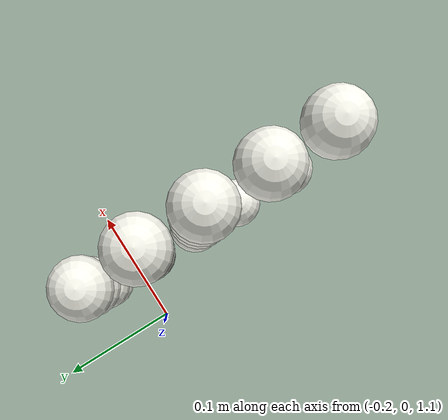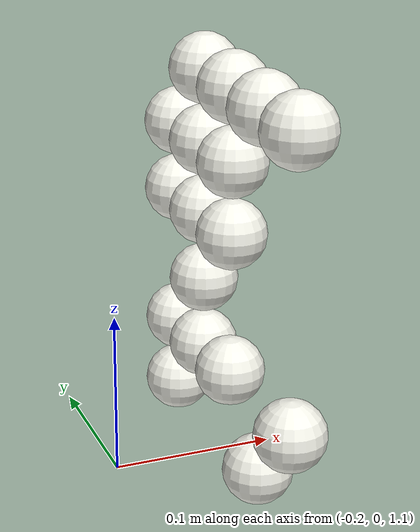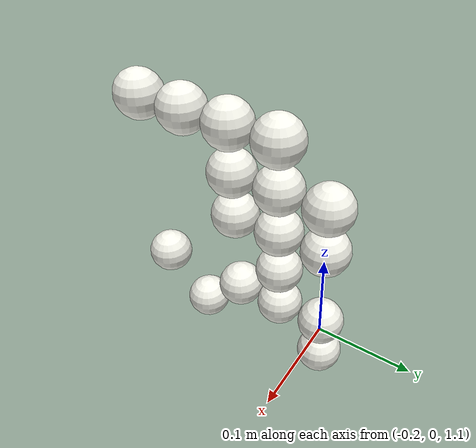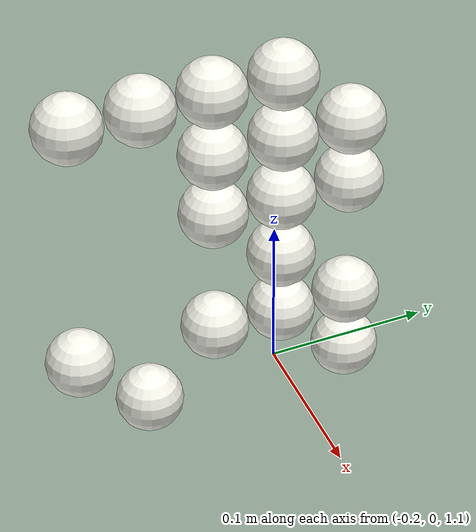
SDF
<sdf version="1.8">
 <world name="physical_100_dt5ms_diagnostic">
  <model name="ground">
   <static>true</static>
   <link name="ground_link">
    <collision name="floor">
     <geometry><plane><normal>0 0 1</normal><size>20 20</size></plane></geometry>
    </collision>
    <visual name="floor_visual">
     <geometry><plane><normal>0 0 1</normal><size>20 20</size></plane></geometry>
     <material><ambient>0.65 0.67 0.7 1</ambient><diffuse>0.65 0.67 0.7 1</diffuse></material>
    </visual>
   </link>
  </model>
  <model name="inventory_ball_006">
   <static>false</static>
   <pose>-0.15037303511163805 -0.1005677356267756 1.1432535594103257 0 0 0</pose>
   <link name="ball_link">
    <inertial>
     <mass>0.0027000000000000001</mass>
     <inertia>
      <ixx>7.1999999999999999e-07</ixx>
      <iyy>7.1999999999999999e-07</iyy>
      <izz>7.1999999999999999e-07</izz>
      <ixy>0</ixy>
      <ixz>0</ixz>
      <iyz>0</iyz>
     </inertia>
    </inertial>
    <collision name="ball_collision">
     <geometry><sphere><radius>0.02</radius></sphere></geometry>
     <surface>
      <friction><ode><mu>0.3</mu><mu2>0.3</mu2></ode></friction>
      <bounce><restitution_coefficient>0.8</restitution_coefficient><threshold>0.01</threshold></bounce>
     </surface>
    </collision>
    <visual name="ball_visual">
     <geometry><sphere><radius>0.02</radius></sphere></geometry>
     <material><ambient>0.96 0.96 0.92 1</ambient><diffuse>0.96 0.96 0.92 1</diffuse></material>
    </visual>
   </link>
  </model>
  <model name="inventory_ball_015">
   <static>false</static>
   <pose>-0.15056326103460904 0.024273632778161268 1.1429478751861544 0 0 0</pose>
   <link name="ball_link">
    <inertial>
     <mass>0.0027000000000000001</mass>
     <inertia>
      <ixx>7.1999999999999999e-07</ixx>
      <iyy>7.1999999999999999e-07</iyy>
      <izz>7.1999999999999999e-07</izz>
      <ixy>0</ixy>
      <ixz>0</ixz>
      <iyz>0</iyz>
     </inertia>
    </inertial>
    <collision name="ball_collision">
     <geometry><sphere><radius>0.02</radius></sphere></geometry>
     <surface>
      <friction><ode><mu>0.3</mu><mu2>0.3</mu2></ode></friction>
      <bounce><restitution_coefficient>0.8</restitution_coefficient><threshold>0.01</threshold></bounce>
     </surface>
    </collision>
    <visual name="ball_visual">
     <geometry><sphere><radius>0.02</radius></sphere></geometry>
     <material><ambient>0.96 0.96 0.92 1</ambient><diffuse>0.96 0.96 0.92 1</diffuse></material>
    </visual>
   </link>
  </model>
  <model name="inventory_ball_018">
   <static>false</static>
   <pose>-0.15057429578153708 -0.14213981330677056 1.1850619927526278 0 0 0</pose>
   <link name="ball_link">
    <inertial>
     <mass>0.0027000000000000001</mass>
     <inertia>
      <ixx>7.1999999999999999e-07</ixx>
      <iyy>7.1999999999999999e-07</iyy>
      <izz>7.1999999999999999e-07</izz>
      <ixy>0</ixy>
      <ixz>0</ixz>
      <iyz>0</iyz>
     </inertia>
    </inertial>
    <collision name="ball_collision">
     <geometry><sphere><radius>0.02</radius></sphere></geometry>
     <surface>
      <friction><ode><mu>0.3</mu><mu2>0.3</mu2></ode></friction>
      <bounce><restitution_coefficient>0.8</restitution_coefficient><threshold>0.01</threshold></bounce>
     </surface>
    </collision>
    <visual name="ball_visual">
     <geometry><sphere><radius>0.02</radius></sphere></geometry>
     <material><ambient>0.96 0.96 0.92 1</ambient><diffuse>0.96 0.96 0.92 1</diffuse></material>
    </visual>
   </link>
  </model>
  <model name="inventory_ball_024">
   <static>false</static>
   <pose>-0.15053935547441455 -0.058973410293848207 1.1850657458286014 0 0 0</pose>
   <link name="ball_link">
    <inertial>
     <mass>0.0027000000000000001</mass>
     <inertia>
      <ixx>7.1999999999999999e-07</ixx>
      <iyy>7.1999999999999999e-07</iyy>
      <izz>7.1999999999999999e-07</izz>
      <ixy>0</ixy>
      <ixz>0</ixz>
      <iyz>0</iyz>
     </inertia>
    </inertial>
    <collision name="ball_collision">
     <geometry><sphere><radius>0.02</radius></sphere></geometry>
     <surface>
      <friction><ode><mu>0.3</mu><mu2>0.3</mu2></ode></friction>
      <bounce><restitution_coefficient>0.8</restitution_coefficient><threshold>0.01</threshold></bounce>
     </surface>
    </collision>
    <visual name="ball_visual">
     <geometry><sphere><radius>0.02</radius></sphere></geometry>
     <material><ambient>0.96 0.96 0.92 1</ambient><diffuse>0.96 0.96 0.92 1</diffuse></material>
    </visual>
   </link>
  </model>
  <model name="inventory_ball_027">
   <static>false</static>
   <pose>-0.15054107190010116 -0.017352023495383603 1.1848368208804982 0 0 0</pose>
   <link name="ball_link">
    <inertial>
     <mass>0.0027000000000000001</mass>
     <inertia>
      <ixx>7.1999999999999999e-07</ixx>
      <iyy>7.1999999999999999e-07</iyy>
      <izz>7.1999999999999999e-07</izz>
      <ixy>0</ixy>
      <ixz>0</ixz>
      <iyz>0</iyz>
     </inertia>
    </inertial>
    <collision name="ball_collision">
     <geometry><sphere><radius>0.02</radius></sphere></geometry>
     <surface>
      <friction><ode><mu>0.3</mu><mu2>0.3</mu2></ode></friction>
      <bounce><restitution_coefficient>0.8</restitution_coefficient><threshold>0.01</threshold></bounce>
     </surface>
    </collision>
    <visual name="ball_visual">
     <geometry><sphere><radius>0.02</radius></sphere></geometry>
     <material><ambient>0.96 0.96 0.92 1</ambient><diffuse>0.96 0.96 0.92 1</diffuse></material>
    </visual>
   </link>
  </model>
  <model name="inventory_ball_030">
   <static>false</static>
   <pose>-0.15039428422379411 0.024154545647304283 1.1845282698252551 0 0 0</pose>
   <link name="ball_link">
    <inertial>
     <mass>0.0027000000000000001</mass>
     <inertia>
      <ixx>7.1999999999999999e-07</ixx>
      <iyy>7.1999999999999999e-07</iyy>
      <izz>7.1999999999999999e-07</izz>
      <ixy>0</ixy>
      <ixz>0</ixz>
      <iyz>0</iyz>
     </inertia>
    </inertial>
    <collision name="ball_collision">
     <geometry><sphere><radius>0.02</radius></sphere></geometry>
     <surface>
      <friction><ode><mu>0.3</mu><mu2>0.3</mu2></ode></friction>
      <bounce><restitution_coefficient>0.8</restitution_coefficient><threshold>0.01</threshold></bounce>
     </surface>
    </collision>
    <visual name="ball_visual">
     <geometry><sphere><radius>0.02</radius></sphere></geometry>
     <material><ambient>0.96 0.96 0.92 1</ambient><diffuse>0.96 0.96 0.92 1</diffuse></material>
    </visual>
   </link>
  </model>
  <model name="inventory_ball_042">
   <static>false</static>
   <pose>-0.15038178779668288 -0.017499656862323226 1.2262944936342031 0 0 0</pose>
   <link name="ball_link">
    <inertial>
     <mass>0.0027000000000000001</mass>
     <inertia>
      <ixx>7.1999999999999999e-07</ixx>
      <iyy>7.1999999999999999e-07</iyy>
      <izz>7.1999999999999999e-07</izz>
      <ixy>0</ixy>
      <ixz>0</ixz>
      <iyz>0</iyz>
     </inertia>
    </inertial>
    <collision name="ball_collision">
     <geometry><sphere><radius>0.02</radius></sphere></geometry>
     <surface>
      <friction><ode><mu>0.3</mu><mu2>0.3</mu2></ode></friction>
      <bounce><restitution_coefficient>0.8</restitution_coefficient><threshold>0.01</threshold></bounce>
     </surface>
    </collision>
    <visual name="ball_visual">
     <geometry><sphere><radius>0.02</radius></sphere></geometry>
     <material><ambient>0.96 0.96 0.92 1</ambient><diffuse>0.96 0.96 0.92 1</diffuse></material>
    </visual>
   </link>
  </model>
  <model name="inventory_ball_054">
   <static>false</static>
   <pose>-0.15056786956932905 -0.059057404148394582 1.2680786617743622 0 0 0</pose>
   <link name="ball_link">
    <inertial>
     <mass>0.0027000000000000001</mass>
     <inertia>
      <ixx>7.1999999999999999e-07</ixx>
      <iyy>7.1999999999999999e-07</iyy>
      <izz>7.1999999999999999e-07</izz>
      <ixy>0</ixy>
      <ixz>0</ixz>
      <iyz>0</iyz>
     </inertia>
    </inertial>
    <collision name="ball_collision">
     <geometry><sphere><radius>0.02</radius></sphere></geometry>
     <surface>
      <friction><ode><mu>0.3</mu><mu2>0.3</mu2></ode></friction>
      <bounce><restitution_coefficient>0.8</restitution_coefficient><threshold>0.01</threshold></bounce>
     </surface>
    </collision>
    <visual name="ball_visual">
     <geometry><sphere><radius>0.02</radius></sphere></geometry>
     <material><ambient>0.96 0.96 0.92 1</ambient><diffuse>0.96 0.96 0.92 1</diffuse></material>
    </visual>
   </link>
  </model>
  <model name="inventory_ball_057">
   <static>false</static>
   <pose>-0.15057145791557772 -0.017420612890764978 1.2682613085443486 0 0 0</pose>
   <link name="ball_link">
    <inertial>
     <mass>0.0027000000000000001</mass>
     <inertia>
      <ixx>7.1999999999999999e-07</ixx>
      <iyy>7.1999999999999999e-07</iyy>
      <izz>7.1999999999999999e-07</izz>
      <ixy>0</ixy>
      <ixz>0</ixz>
      <iyz>0</iyz>
     </inertia>
    </inertial>
    <collision name="ball_collision">
     <geometry><sphere><radius>0.02</radius></sphere></geometry>
     <surface>
      <friction><ode><mu>0.3</mu><mu2>0.3</mu2></ode></friction>
      <bounce><restitution_coefficient>0.8</restitution_coefficient><threshold>0.01</threshold></bounce>
     </surface>
    </collision>
    <visual name="ball_visual">
     <geometry><sphere><radius>0.02</radius></sphere></geometry>
     <material><ambient>0.96 0.96 0.92 1</ambient><diffuse>0.96 0.96 0.92 1</diffuse></material>
    </visual>
   </link>
  </model>
  <model name="inventory_ball_060">
   <static>false</static>
   <pose>-0.15044136929055615 0.024354147173811957 1.2679802148008223 0 0 0</pose>
   <link name="ball_link">
    <inertial>
     <mass>0.0027000000000000001</mass>
     <inertia>
      <ixx>7.1999999999999999e-07</ixx>
      <iyy>7.1999999999999999e-07</iyy>
      <izz>7.1999999999999999e-07</izz>
      <ixy>0</ixy>
      <ixz>0</ixz>
      <iyz>0</iyz>
     </inertia>
    </inertial>
    <collision name="ball_collision">
     <geometry><sphere><radius>0.02</radius></sphere></geometry>
     <surface>
      <friction><ode><mu>0.3</mu><mu2>0.3</mu2></ode></friction>
      <bounce><restitution_coefficient>0.8</restitution_coefficient><threshold>0.01</threshold></bounce>
     </surface>
    </collision>
    <visual name="ball_visual">
     <geometry><sphere><radius>0.02</radius></sphere></geometry>
     <material><ambient>0.96 0.96 0.92 1</ambient><diffuse>0.96 0.96 0.92 1</diffuse></material>
    </visual>
   </link>
  </model>
  <model name="inventory_ball_069">
   <static>false</static>
   <pose>-0.15040861532472954 -0.058971751620480496 1.3095406241755301 0 0 0</pose>
   <link name="ball_link">
    <inertial>
     <mass>0.0027000000000000001</mass>
     <inertia>
      <ixx>7.1999999999999999e-07</ixx>
      <iyy>7.1999999999999999e-07</iyy>
      <izz>7.1999999999999999e-07</izz>
      <ixy>0</ixy>
      <ixz>0</ixz>
      <iyz>0</iyz>
     </inertia>
    </inertial>
    <collision name="ball_collision">
     <geometry><sphere><radius>0.02</radius></sphere></geometry>
     <surface>
      <friction><ode><mu>0.3</mu><mu2>0.3</mu2></ode></friction>
      <bounce><restitution_coefficient>0.8</restitution_coefficient><threshold>0.01</threshold></bounce>
     </surface>
    </collision>
    <visual name="ball_visual">
     <geometry><sphere><radius>0.02</radius></sphere></geometry>
     <material><ambient>0.96 0.96 0.92 1</ambient><diffuse>0.96 0.96 0.92 1</diffuse></material>
    </visual>
   </link>
  </model>
  <model name="inventory_ball_072">
   <static>false</static>
   <pose>-0.15044619550840588 -0.01692560941548419 1.3098972536136959 0 0 0</pose>
   <link name="ball_link">
    <inertial>
     <mass>0.0027000000000000001</mass>
     <inertia>
      <ixx>7.1999999999999999e-07</ixx>
      <iyy>7.1999999999999999e-07</iyy>
      <izz>7.1999999999999999e-07</izz>
      <ixy>0</ixy>
      <ixz>0</ixz>
      <iyz>0</iyz>
     </inertia>
    </inertial>
    <collision name="ball_collision">
     <geometry><sphere><radius>0.02</radius></sphere></geometry>
     <surface>
      <friction><ode><mu>0.3</mu><mu2>0.3</mu2></ode></friction>
      <bounce><restitution_coefficient>0.8</restitution_coefficient><threshold>0.01</threshold></bounce>
     </surface>
    </collision>
    <visual name="ball_visual">
     <geometry><sphere><radius>0.02</radius></sphere></geometry>
     <material><ambient>0.96 0.96 0.92 1</ambient><diffuse>0.96 0.96 0.92 1</diffuse></material>
    </visual>
   </link>
  </model>
  <model name="inventory_ball_075">
   <static>false</static>
   <pose>-0.15037468287917541 0.024548785336227442 1.3093342991637449 0 0 0</pose>
   <link name="ball_link">
    <inertial>
     <mass>0.0027000000000000001</mass>
     <inertia>
      <ixx>7.1999999999999999e-07</ixx>
      <iyy>7.1999999999999999e-07</iyy>
      <izz>7.1999999999999999e-07</izz>
      <ixy>0</ixy>
      <ixz>0</ixz>
      <iyz>0</iyz>
     </inertia>
    </inertial>
    <collision name="ball_collision">
     <geometry><sphere><radius>0.02</radius></sphere></geometry>
     <surface>
      <friction><ode><mu>0.3</mu><mu2>0.3</mu2></ode></friction>
      <bounce><restitution_coefficient>0.8</restitution_coefficient><threshold>0.01</threshold></bounce>
     </surface>
    </collision>
    <visual name="ball_visual">
     <geometry><sphere><radius>0.02</radius></sphere></geometry>
     <material><ambient>0.96 0.96 0.92 1</ambient><diffuse>0.96 0.96 0.92 1</diffuse></material>
    </visual>
   </link>
  </model>
  <model name="inventory_ball_078">
   <static>false</static>
   <pose>-0.15058850502341153 -0.14194297893613 1.3513051275321626 0 0 0</pose>
   <link name="ball_link">
    <inertial>
     <mass>0.0027000000000000001</mass>
     <inertia>
      <ixx>7.1999999999999999e-07</ixx>
      <iyy>7.1999999999999999e-07</iyy>
      <izz>7.1999999999999999e-07</izz>
      <ixy>0</ixy>
      <ixz>0</ixz>
      <iyz>0</iyz>
     </inertia>
    </inertial>
    <collision name="ball_collision">
     <geometry><sphere><radius>0.02</radius></sphere></geometry>
     <surface>
      <friction><ode><mu>0.3</mu><mu2>0.3</mu2></ode></friction>
      <bounce><restitution_coefficient>0.8</restitution_coefficient><threshold>0.01</threshold></bounce>
     </surface>
    </collision>
    <visual name="ball_visual">
     <geometry><sphere><radius>0.02</radius></sphere></geometry>
     <material><ambient>0.96 0.96 0.92 1</ambient><diffuse>0.96 0.96 0.92 1</diffuse></material>
    </visual>
   </link>
  </model>
  <model name="inventory_ball_081">
   <static>false</static>
   <pose>-0.15044846505079845 -0.10034979662642528 1.3512136696293193 0 0 0</pose>
   <link name="ball_link">
    <inertial>
     <mass>0.0027000000000000001</mass>
     <inertia>
      <ixx>7.1999999999999999e-07</ixx>
      <iyy>7.1999999999999999e-07</iyy>
      <izz>7.1999999999999999e-07</izz>
      <ixy>0</ixy>
      <ixz>0</ixz>
      <iyz>0</iyz>
     </inertia>
    </inertial>
    <collision name="ball_collision">
     <geometry><sphere><radius>0.02</radius></sphere></geometry>
     <surface>
      <friction><ode><mu>0.3</mu><mu2>0.3</mu2></ode></friction>
      <bounce><restitution_coefficient>0.8</restitution_coefficient><threshold>0.01</threshold></bounce>
     </surface>
    </collision>
    <visual name="ball_visual">
     <geometry><sphere><radius>0.02</radius></sphere></geometry>
     <material><ambient>0.96 0.96 0.92 1</ambient><diffuse>0.96 0.96 0.92 1</diffuse></material>
    </visual>
   </link>
  </model>
  <model name="inventory_ball_084">
   <static>false</static>
   <pose>-0.15052000175212071 -0.058910293682236894 1.3513511186954488 0 0 0</pose>
   <link name="ball_link">
    <inertial>
     <mass>0.0027000000000000001</mass>
     <inertia>
      <ixx>7.1999999999999999e-07</ixx>
      <iyy>7.1999999999999999e-07</iyy>
      <izz>7.1999999999999999e-07</izz>
      <ixy>0</ixy>
      <ixz>0</ixz>
      <iyz>0</iyz>
     </inertia>
    </inertial>
    <collision name="ball_collision">
     <geometry><sphere><radius>0.02</radius></sphere></geometry>
     <surface>
      <friction><ode><mu>0.3</mu><mu2>0.3</mu2></ode></friction>
      <bounce><restitution_coefficient>0.8</restitution_coefficient><threshold>0.01</threshold></bounce>
     </surface>
    </collision>
    <visual name="ball_visual">
     <geometry><sphere><radius>0.02</radius></sphere></geometry>
     <material><ambient>0.96 0.96 0.92 1</ambient><diffuse>0.96 0.96 0.92 1</diffuse></material>
    </visual>
   </link>
  </model>
  <model name="inventory_ball_087">
   <static>false</static>
   <pose>-0.15054087975114974 -0.016940044373203768 1.3514285185042121 0 0 0</pose>
   <link name="ball_link">
    <inertial>
     <mass>0.0027000000000000001</mass>
     <inertia>
      <ixx>7.1999999999999999e-07</ixx>
      <iyy>7.1999999999999999e-07</iyy>
      <izz>7.1999999999999999e-07</izz>
      <ixy>0</ixy>
      <ixz>0</ixz>
      <iyz>0</iyz>
     </inertia>
    </inertial>
    <collision name="ball_collision">
     <geometry><sphere><radius>0.02</radius></sphere></geometry>
     <surface>
      <friction><ode><mu>0.3</mu><mu2>0.3</mu2></ode></friction>
      <bounce><restitution_coefficient>0.8</restitution_coefficient><threshold>0.01</threshold></bounce>
     </surface>
    </collision>
    <visual name="ball_visual">
     <geometry><sphere><radius>0.02</radius></sphere></geometry>
     <material><ambient>0.96 0.96 0.92 1</ambient><diffuse>0.96 0.96 0.92 1</diffuse></material>
    </visual>
   </link>
  </model>
 </world>
</sdf>
